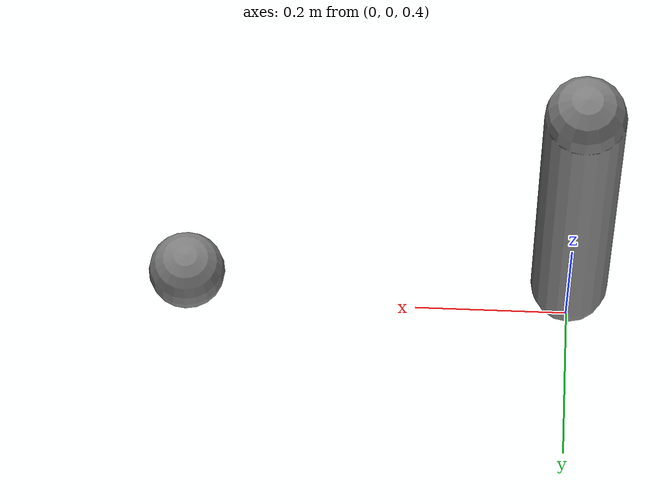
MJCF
<mujoco model="mocap-stress">
  <option timestep="0.002"/>
  <worldbody>
    <body name="target" mocap="true" pos="0.5 0 0.5">
      <geom type="sphere" size="0.05" contype="0" conaffinity="0"/>
    </body>
    <body name="pendulum" pos="0 0 1">
      <joint name="hinge" type="hinge" axis="0 1 0"/>
      <geom type="capsule" size="0.05" fromto="0 0 0 0 0 -0.5" mass="1"/>
    </body>
  </worldbody>
  <actuator>
    <motor joint="hinge" name="motor"/>
  </actuator>
</mujoco>
